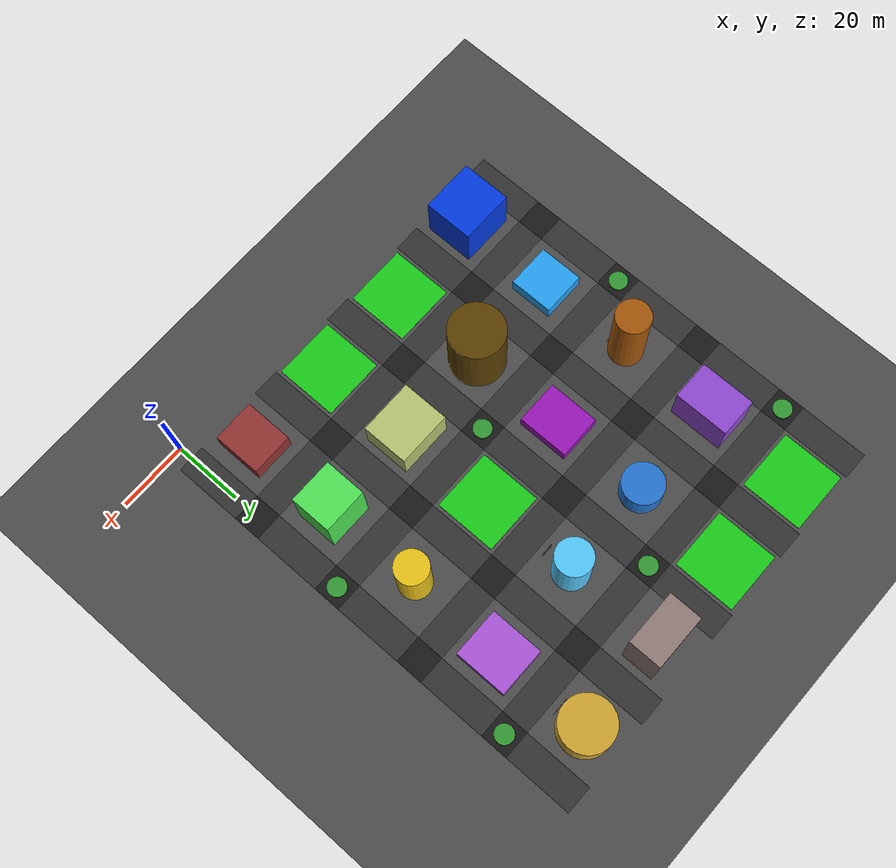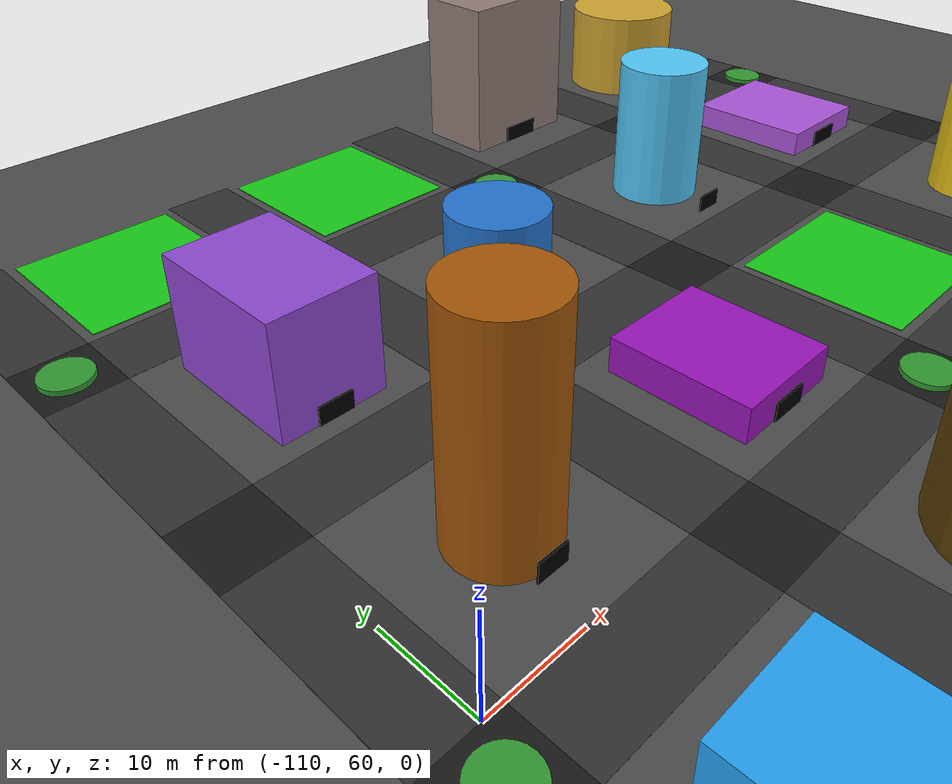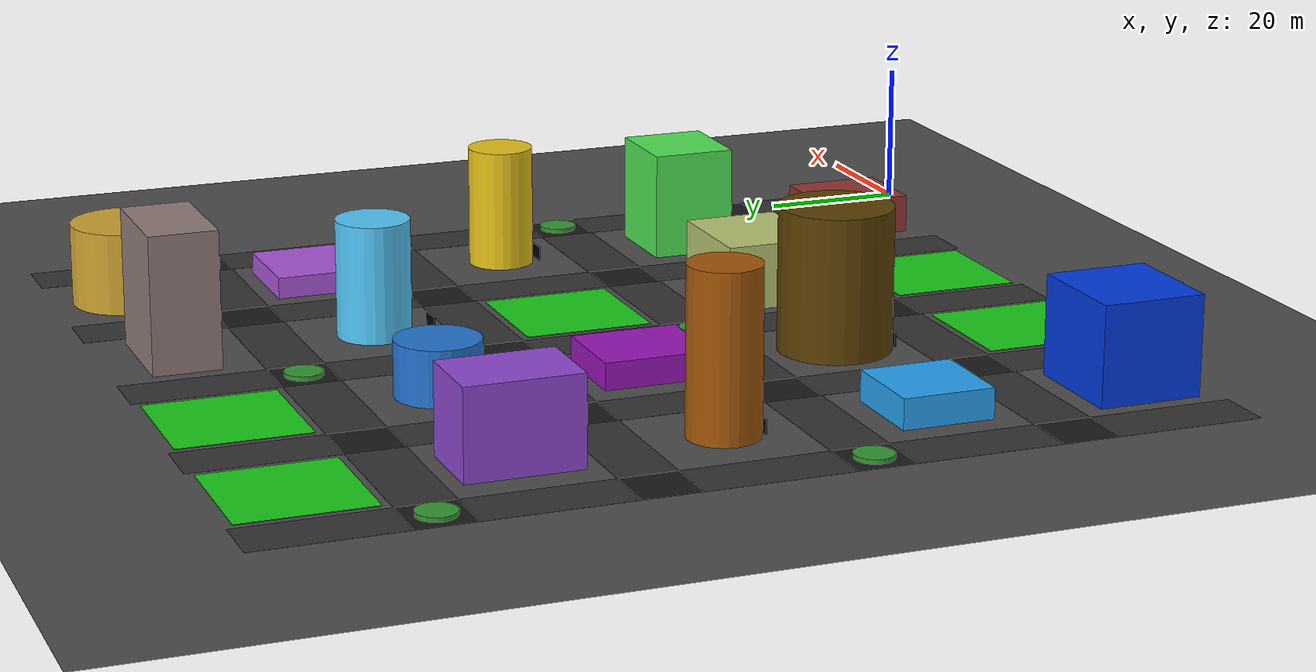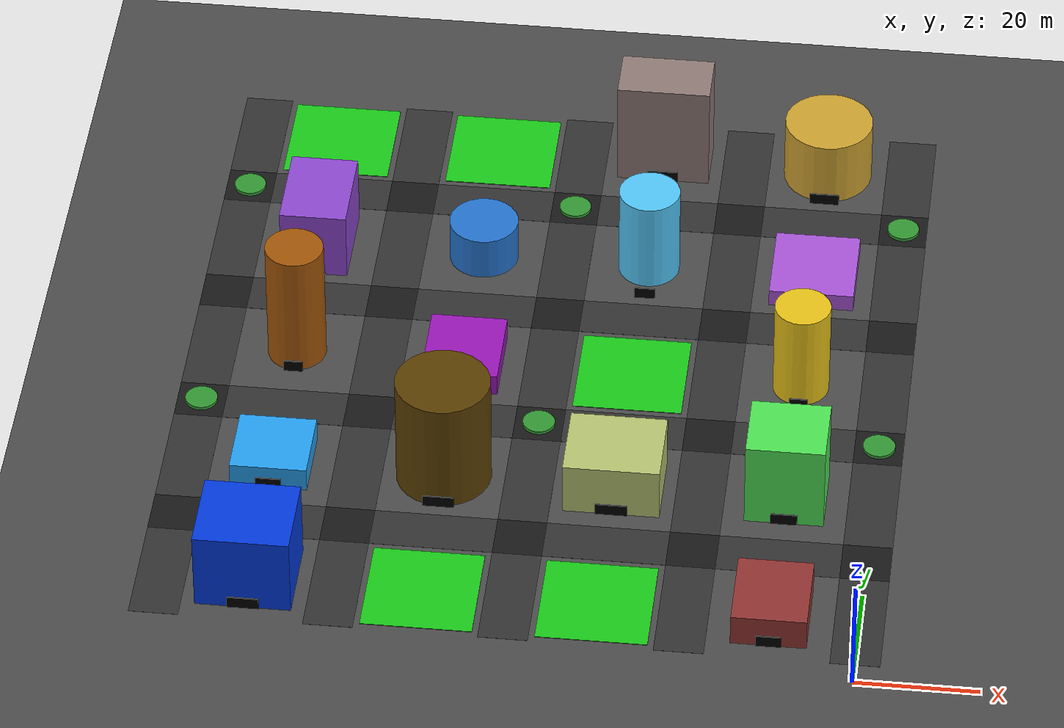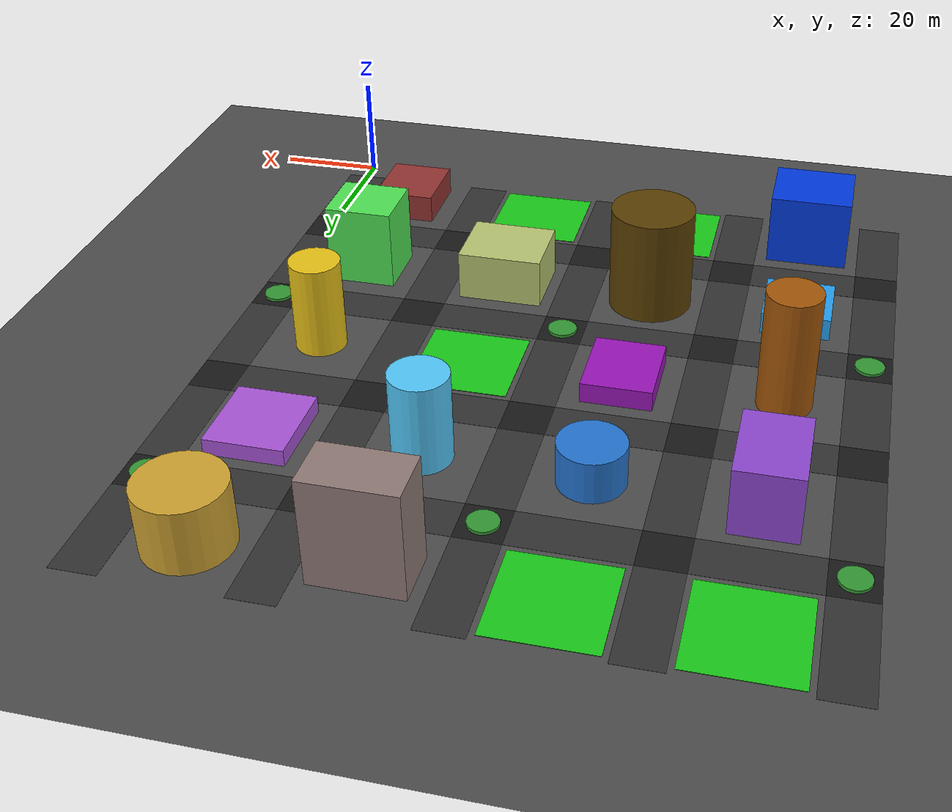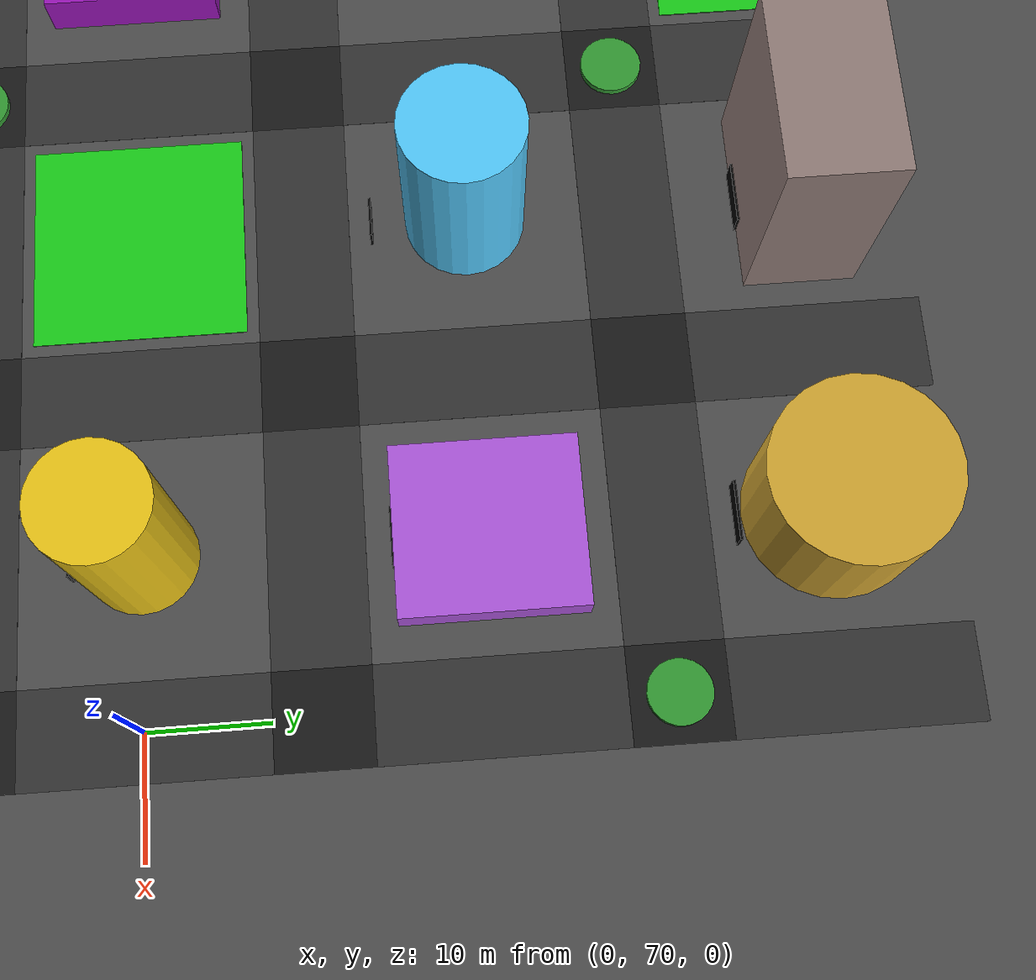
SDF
<sdf version="1.8">
 <world name="urban_city_rich">
  <model name="ground_plane">
   <static>true</static>
   <link name="link">
    <collision name="collision">
     <geometry><plane><normal>0 0 1</normal><size>200 200</size></plane></geometry>
     <surface><friction><ode><mu>100</mu><mu2>50</mu2></ode></friction></surface>
    </collision>
    <visual name="visual">
     <geometry><plane><normal>0 0 1</normal><size>200 200</size></plane></geometry>
     <material><ambient>0.3 0.3 0.3 1</ambient><diffuse>0.3 0.3 0.3 1</diffuse></material>
    </visual>
   </link>
  </model>
  <model name="road_v_-4_0">
   <static>true</static>
   <pose>-112.0 14.0 0.01 0 0 0</pose>
   <link name="link">
    <visual name="vis">
     <geometry><box><size>8.0 20.0 0.02</size></box></geometry>
     <material><ambient>0.2 0.2 0.2 1</ambient><diffuse>0.2 0.2 0.2 1</diffuse></material>
    </visual>
   </link>
  </model>
  <model name="bldg_2">
   <static>true</static>
   <pose>-98.0 14.0 6.871921854589109 0 0 0</pose>
   <link name="link">
    <collision name="col">
     <geometry><box><size>15.495885785892245 14.268601737189726 13.743843709178218</size></box></geometry>
    </collision>
    <visual name="vis">
     <geometry><box><size>15.495885785892245 14.268601737189726 13.743843709178218</size></box></geometry>
     <material>
      <ambient>0.007378564841799773 0.23080644680875095 0.8802637911668005 1</ambient>
      <diffuse>0.007378564841799773 0.23080644680875095 0.8802637911668005 1</diffuse>
     </material>
    </visual>
   </link>
  </model>
  <model name="door_2">
   <static>true</static>
   <pose>-98.0 6.765699131405137 1.0 0 0 0</pose>
   <link name="link">
    <visual name="vis">
     <geometry><box><size>5.165295261964082 0.2 2.0</size></box></geometry>
     <material><ambient>0 0 0 1</ambient><diffuse>0 0 0 1</diffuse></material>
    </visual>
   </link>
  </model>
  <model name="road_inter_-4_1">
   <static>true</static>
   <pose>-112.0 28.0 0.01 0 0 0</pose>
   <link name="link">
    <visual name="vis">
     <geometry><box><size>8.0 8.0 0.02</size></box></geometry>
     <material><ambient>0.1 0.1 0.1 1</ambient><diffuse>0.1 0.1 0.1 1</diffuse></material>
    </visual>
   </link>
  </model>
  <model name="road_h_-4_1">
   <static>true</static>
   <pose>-98.0 28.0 0.01 0 0 0</pose>
   <link name="link">
    <visual name="vis">
     <geometry><box><size>20.0 8.0 0.02</size></box></geometry>
     <material><ambient>0.2 0.2 0.2 1</ambient><diffuse>0.2 0.2 0.2 1</diffuse></material>
    </visual>
   </link>
  </model>
  <model name="road_v_-4_1">
   <static>true</static>
   <pose>-112.0 42.0 0.01 0 0 0</pose>
   <link name="link">
    <visual name="vis">
     <geometry><box><size>8.0 20.0 0.02</size></box></geometry>
     <material><ambient>0.2 0.2 0.2 1</ambient><diffuse>0.2 0.2 0.2 1</diffuse></material>
    </visual>
   </link>
  </model>
  <model name="bldg_3">
   <static>true</static>
   <pose>-98.0 42.0 2.091871394252661 0 0 0</pose>
   <link name="link">
    <collision name="col">
     <geometry><box><size>12.65519496365092 12.680258744932562 4.183742788505322</size></box></geometry>
    </collision>
    <visual name="vis">
     <geometry><box><size>12.65519496365092 12.680258744932562 4.183742788505322</size></box></geometry>
     <material>
      <ambient>0.1498548266455363 0.6387725588322049 0.955054819178483 1</ambient>
      <diffuse>0.1498548266455363 0.6387725588322049 0.955054819178483 1</diffuse>
     </material>
    </visual>
   </link>
  </model>
  <model name="door_3">
   <static>true</static>
   <pose>-98.0 35.55987062753372 1.0 0 0 0</pose>
   <link name="link">
    <visual name="vis">
     <geometry><box><size>4.218398321216974 0.2 2.0</size></box></geometry>
     <material><ambient>0 0 0 1</ambient><diffuse>0 0 0 1</diffuse></material>
    </visual>
   </link>
  </model>
  <model name="road_inter_-4_2">
   <static>true</static>
   <pose>-112.0 56.0 0.01 0 0 0</pose>
   <link name="link">
    <visual name="vis">
     <geometry><box><size>8.0 8.0 0.02</size></box></geometry>
     <material><ambient>0.1 0.1 0.1 1</ambient><diffuse>0.1 0.1 0.1 1</diffuse></material>
    </visual>
   </link>
  </model>
  <model name="roundabout_-4_2">
   <static>true</static>
   <pose>-112.0 56.0 0.3 0 0 0</pose>
   <link name="link">
    <collision name="col">
     <geometry><cylinder><radius>2.6666666666666665</radius><length>0.6</length></cylinder></geometry>
    </collision>
    <visual name="vis">
     <geometry><cylinder><radius>2.6666666666666665</radius><length>0.6</length></cylinder></geometry>
     <material><ambient>0.2 0.6 0.2 1</ambient><diffuse>0.2 0.6 0.2 1</diffuse></material>
    </visual>
   </link>
  </model>
  <model name="road_h_-4_2">
   <static>true</static>
   <pose>-98.0 56.0 0.01 0 0 0</pose>
   <link name="link">
    <visual name="vis">
     <geometry><box><size>20.0 8.0 0.02</size></box></geometry>
     <material><ambient>0.2 0.2 0.2 1</ambient><diffuse>0.2 0.2 0.2 1</diffuse></material>
    </visual>
   </link>
  </model>
  <model name="road_v_-4_2">
   <static>true</static>
   <pose>-112.0 70.0 0.01 0 0 0</pose>
   <link name="link">
    <visual name="vis">
     <geometry><box><size>8.0 20.0 0.02</size></box></geometry>
     <material><ambient>0.2 0.2 0.2 1</ambient><diffuse>0.2 0.2 0.2 1</diffuse></material>
    </visual>
   </link>
  </model>
  <model name="bldg_4">
   <static>true</static>
   <pose>-98.0 70.0 11.17141163954446 0 0 0</pose>
   <link name="link">
    <collision name="col">
     <geometry><cylinder><radius>4.861963068080618</radius><length>22.34282327908892</length></cylinder></geometry>
    </collision>
    <visual name="vis">
     <geometry><cylinder><radius>4.861963068080618</radius><length>22.34282327908892</length></cylinder></geometry>
     <material>
      <ambient>0.6452800324957052 0.34005277793005484 0.035646647061961856 1</ambient>
      <diffuse>0.6452800324957052 0.34005277793005484 0.035646647061961856 1</diffuse>
     </material>
    </visual>
   </link>
  </model>
  <model name="door_4">
   <static>true</static>
   <pose>-98.0 64.91522386664495 1.0 0 0 0</pose>
   <link name="link">
    <visual name="vis">
     <geometry><box><size>3.2413087120537454 0.2 2.0</size></box></geometry>
     <material><ambient>0 0 0 1</ambient><diffuse>0 0 0 1</diffuse></material>
    </visual>
   </link>
  </model>
  <model name="road_inter_-4_3">
   <static>true</static>
   <pose>-112.0 84.0 0.01 0 0 0</pose>
   <link name="link">
    <visual name="vis">
     <geometry><box><size>8.0 8.0 0.02</size></box></geometry>
     <material><ambient>0.1 0.1 0.1 1</ambient><diffuse>0.1 0.1 0.1 1</diffuse></material>
    </visual>
   </link>
  </model>
  <model name="road_h_-4_3">
   <static>true</static>
   <pose>-98.0 84.0 0.01 0 0 0</pose>
   <link name="link">
    <visual name="vis">
     <geometry><box><size>20.0 8.0 0.02</size></box></geometry>
     <material><ambient>0.2 0.2 0.2 1</ambient><diffuse>0.2 0.2 0.2 1</diffuse></material>
    </visual>
   </link>
  </model>
  <model name="road_v_-4_3">
   <static>true</static>
   <pose>-112.0 98.0 0.01 0 0 0</pose>
   <link name="link">
    <visual name="vis">
     <geometry><box><size>8.0 20.0 0.02</size></box></geometry>
     <material><ambient>0.2 0.2 0.2 1</ambient><diffuse>0.2 0.2 0.2 1</diffuse></material>
    </visual>
   </link>
  </model>
  <model name="bldg_5">
   <static>true</static>
   <pose>-98.0 98.0 6.102142837959303 0 0 0</pose>
   <link name="link">
    <collision name="col">
     <geometry><box><size>11.222737588818491 15.767643930074145 12.204285675918605</size></box></geometry>
    </collision>
    <visual name="vis">
     <geometry><box><size>11.222737588818491 15.767643930074145 12.204285675918605</size></box></geometry>
     <material>
      <ambient>0.5592032974253442 0.2837923102071037 0.8228978980625674 1</ambient>
      <diffuse>0.5592032974253442 0.2837923102071037 0.8228978980625674 1</diffuse>
     </material>
    </visual>
   </link>
  </model>
  <model name="door_5">
   <static>true</static>
   <pose>-98.0 90.01617803496293 1.0 0 0 0</pose>
   <link name="link">
    <visual name="vis">
     <geometry><box><size>3.7409125296061636 0.2 2.0</size></box></geometry>
     <material><ambient>0 0 0 1</ambient><diffuse>0 0 0 1</diffuse></material>
    </visual>
   </link>
  </model>
  <model name="road_inter_-4_4">
   <static>true</static>
   <pose>-112.0 112.0 0.01 0 0 0</pose>
   <link name="link">
    <visual name="vis">
     <geometry><box><size>8.0 8.0 0.02</size></box></geometry>
     <material><ambient>0.1 0.1 0.1 1</ambient><diffuse>0.1 0.1 0.1 1</diffuse></material>
    </visual>
   </link>
  </model>
  <model name="roundabout_-4_4">
   <static>true</static>
   <pose>-112.0 112.0 0.3 0 0 0</pose>
   <link name="link">
    <collision name="col">
     <geometry><cylinder><radius>2.6666666666666665</radius><length>0.6</length></cylinder></geometry>
    </collision>
    <visual name="vis">
     <geometry><cylinder><radius>2.6666666666666665</radius><length>0.6</length></cylinder></geometry>
     <material><ambient>0.2 0.6 0.2 1</ambient><diffuse>0.2 0.6 0.2 1</diffuse></material>
    </visual>
   </link>
  </model>
  <model name="road_h_-4_4">
   <static>true</static>
   <pose>-98.0 112.0 0.01 0 0 0</pose>
   <link name="link">
    <visual name="vis">
     <geometry><box><size>20.0 8.0 0.02</size></box></geometry>
     <material><ambient>0.2 0.2 0.2 1</ambient><diffuse>0.2 0.2 0.2 1</diffuse></material>
    </visual>
   </link>
  </model>
  <model name="road_v_-4_4">
   <static>true</static>
   <pose>-112.0 126.0 0.01 0 0 0</pose>
   <link name="link">
    <visual name="vis">
     <geometry><box><size>8.0 20.0 0.02</size></box></geometry>
     <material><ambient>0.2 0.2 0.2 1</ambient><diffuse>0.2 0.2 0.2 1</diffuse></material>
    </visual>
   </link>
  </model>
  <model name="park_-4_4">
   <static>true</static>
   <pose>-98.0 126.0 0.05 0 0 0</pose>
   <link name="link">
    <visual name="vis">
     <geometry><box><size>18.0 18.0 0.1</size></box></geometry>
     <material><ambient>0.1 0.8 0.1 1</ambient><diffuse>0.1 0.8 0.1 1</diffuse></material>
    </visual>
   </link>
  </model>
  <model name="road_v_-3_0">
   <static>true</static>
   <pose>-84.0 14.0 0.01 0 0 0</pose>
   <link name="link">
    <visual name="vis">
     <geometry><box><size>8.0 20.0 0.02</size></box></geometry>
     <material><ambient>0.2 0.2 0.2 1</ambient><diffuse>0.2 0.2 0.2 1</diffuse></material>
    </visual>
   </link>
  </model>
  <model name="park_-3_0">
   <static>true</static>
   <pose>-70.0 14.0 0.05 0 0 0</pose>
   <link name="link">
    <visual name="vis">
     <geometry><box><size>18.0 18.0 0.1</size></box></geometry>
     <material><ambient>0.1 0.8 0.1 1</ambient><diffuse>0.1 0.8 0.1 1</diffuse></material>
    </visual>
   </link>
  </model>
  <model name="road_inter_-3_1">
   <static>true</static>
   <pose>-84.0 28.0 0.01 0 0 0</pose>
   <link name="link">
    <visual name="vis">
     <geometry><box><size>8.0 8.0 0.02</size></box></geometry>
     <material><ambient>0.1 0.1 0.1 1</ambient><diffuse>0.1 0.1 0.1 1</diffuse></material>
    </visual>
   </link>
  </model>
  <model name="road_h_-3_1">
   <static>true</static>
   <pose>-70.0 28.0 0.01 0 0 0</pose>
   <link name="link">
    <visual name="vis">
     <geometry><box><size>20.0 8.0 0.02</size></box></geometry>
     <material><ambient>0.2 0.2 0.2 1</ambient><diffuse>0.2 0.2 0.2 1</diffuse></material>
    </visual>
   </link>
  </model>
  <model name="road_v_-3_1">
   <static>true</static>
   <pose>-84.0 42.0 0.01 0 0 0</pose>
   <link name="link">
    <visual name="vis">
     <geometry><box><size>8.0 20.0 0.02</size></box></geometry>
     <material><ambient>0.2 0.2 0.2 1</ambient><diffuse>0.2 0.2 0.2 1</diffuse></material>
    </visual>
   </link>
  </model>
  <model name="bldg_9">
   <static>true</static>
   <pose>-70.0 42.0 9.960052538225515 0 0 0</pose>
   <link name="link">
    <collision name="col">
     <geometry>
      <cylinder><radius>7.8172579100735575</radius><length>19.92010507645103</length></cylinder>
     </geometry>
    </collision>
    <visual name="vis">
     <geometry>
      <cylinder><radius>7.8172579100735575</radius><length>19.92010507645103</length></cylinder>
     </geometry>
     <material>
      <ambient>0.3586243095088105 0.24959450865288613 0.012275405890124547 1</ambient>
      <diffuse>0.3586243095088105 0.24959450865288613 0.012275405890124547 1</diffuse>
     </material>
    </visual>
   </link>
  </model>
  <model name="door_9">
   <static>true</static>
   <pose>-70.0 34.14622287364215 1.0 0 0 0</pose>
   <link name="link">
    <visual name="vis">
     <geometry><box><size>5.211505273382372 0.2 2.0</size></box></geometry>
     <material><ambient>0 0 0 1</ambient><diffuse>0 0 0 1</diffuse></material>
    </visual>
   </link>
  </model>
  <model name="road_inter_-3_2">
   <static>true</static>
   <pose>-84.0 56.0 0.01 0 0 0</pose>
   <link name="link">
    <visual name="vis">
     <geometry><box><size>8.0 8.0 0.02</size></box></geometry>
     <material><ambient>0.1 0.1 0.1 1</ambient><diffuse>0.1 0.1 0.1 1</diffuse></material>
    </visual>
   </link>
  </model>
  <model name="road_h_-3_2">
   <static>true</static>
   <pose>-70.0 56.0 0.01 0 0 0</pose>
   <link name="link">
    <visual name="vis">
     <geometry><box><size>20.0 8.0 0.02</size></box></geometry>
     <material><ambient>0.2 0.2 0.2 1</ambient><diffuse>0.2 0.2 0.2 1</diffuse></material>
    </visual>
   </link>
  </model>
  <model name="road_v_-3_2">
   <static>true</static>
   <pose>-84.0 70.0 0.01 0 0 0</pose>
   <link name="link">
    <visual name="vis">
     <geometry><box><size>8.0 20.0 0.02</size></box></geometry>
     <material><ambient>0.2 0.2 0.2 1</ambient><diffuse>0.2 0.2 0.2 1</diffuse></material>
    </visual>
   </link>
  </model>
  <model name="bldg_10">
   <static>true</static>
   <pose>-70.0 70.0 1.8771646480618858 0 0 0</pose>
   <link name="link">
    <collision name="col">
     <geometry><box><size>12.654126522715291 14.81363523251945 3.7543292961237715</size></box></geometry>
    </collision>
    <visual name="vis">
     <geometry><box><size>12.654126522715291 14.81363523251945 3.7543292961237715</size></box></geometry>
     <material>
      <ambient>0.6026039844535511 0.08320478289895294 0.7268993759771187 1</ambient>
      <diffuse>0.6026039844535511 0.08320478289895294 0.7268993759771187 1</diffuse>
     </material>
    </visual>
   </link>
  </model>
  <model name="door_10">
   <static>true</static>
   <pose>-70.0 62.493182383740276 1.0 0 0 0</pose>
   <link name="link">
    <visual name="vis">
     <geometry><box><size>4.21804217423843 0.2 2.0</size></box></geometry>
     <material><ambient>0 0 0 1</ambient><diffuse>0 0 0 1</diffuse></material>
    </visual>
   </link>
  </model>
  <model name="road_inter_-3_3">
   <static>true</static>
   <pose>-84.0 84.0 0.01 0 0 0</pose>
   <link name="link">
    <visual name="vis">
     <geometry><box><size>8.0 8.0 0.02</size></box></geometry>
     <material><ambient>0.1 0.1 0.1 1</ambient><diffuse>0.1 0.1 0.1 1</diffuse></material>
    </visual>
   </link>
  </model>
  <model name="road_h_-3_3">
   <static>true</static>
   <pose>-70.0 84.0 0.01 0 0 0</pose>
   <link name="link">
    <visual name="vis">
     <geometry><box><size>20.0 8.0 0.02</size></box></geometry>
     <material><ambient>0.2 0.2 0.2 1</ambient><diffuse>0.2 0.2 0.2 1</diffuse></material>
    </visual>
   </link>
  </model>
  <model name="road_v_-3_3">
   <static>true</static>
   <pose>-84.0 98.0 0.01 0 0 0</pose>
   <link name="link">
    <visual name="vis">
     <geometry><box><size>8.0 20.0 0.02</size></box></geometry>
     <material><ambient>0.2 0.2 0.2 1</ambient><diffuse>0.2 0.2 0.2 1</diffuse></material>
    </visual>
   </link>
  </model>
  <model name="bldg_11">
   <static>true</static>
   <pose>-70.0 98.0 3.8265298128650302 0 0 0</pose>
   <link name="link">
    <collision name="col">
     <geometry>
      <cylinder><radius>5.824363381465605</radius><length>7.6530596257300605</length></cylinder>
     </geometry>
    </collision>
    <visual name="vis">
     <geometry>
      <cylinder><radius>5.824363381465605</radius><length>7.6530596257300605</length></cylinder>
     </geometry>
     <material>
      <ambient>0.14358297201273418 0.4594956118217749 0.818678515794683 1</ambient>
      <diffuse>0.14358297201273418 0.4594956118217749 0.818678515794683 1</diffuse>
     </material>
    </visual>
   </link>
  </model>
  <model name="door_11">
   <static>true</static>
   <pose>-70.0 93.88478456954448 1.0 0 0 0</pose>
   <link name="link">
    <visual name="vis">
     <geometry><box><size>3.8829089209770697 0.2 2.0</size></box></geometry>
     <material><ambient>0 0 0 1</ambient><diffuse>0 0 0 1</diffuse></material>
    </visual>
   </link>
  </model>
  <model name="road_inter_-3_4">
   <static>true</static>
   <pose>-84.0 112.0 0.01 0 0 0</pose>
   <link name="link">
    <visual name="vis">
     <geometry><box><size>8.0 8.0 0.02</size></box></geometry>
     <material><ambient>0.1 0.1 0.1 1</ambient><diffuse>0.1 0.1 0.1 1</diffuse></material>
    </visual>
   </link>
  </model>
  <model name="road_h_-3_4">
   <static>true</static>
   <pose>-70.0 112.0 0.01 0 0 0</pose>
   <link name="link">
    <visual name="vis">
     <geometry><box><size>20.0 8.0 0.02</size></box></geometry>
     <material><ambient>0.2 0.2 0.2 1</ambient><diffuse>0.2 0.2 0.2 1</diffuse></material>
    </visual>
   </link>
  </model>
  <model name="road_v_-3_4">
   <static>true</static>
   <pose>-84.0 126.0 0.01 0 0 0</pose>
   <link name="link">
    <visual name="vis">
     <geometry><box><size>8.0 20.0 0.02</size></box></geometry>
     <material><ambient>0.2 0.2 0.2 1</ambient><diffuse>0.2 0.2 0.2 1</diffuse></material>
    </visual>
   </link>
  </model>
  <model name="park_-3_4">
   <static>true</static>
   <pose>-70.0 126.0 0.05 0 0 0</pose>
   <link name="link">
    <visual name="vis">
     <geometry><box><size>18.0 18.0 0.1</size></box></geometry>
     <material><ambient>0.1 0.8 0.1 1</ambient><diffuse>0.1 0.8 0.1 1</diffuse></material>
    </visual>
   </link>
  </model>
  <model name="road_v_-2_0">
   <static>true</static>
   <pose>-56.0 14.0 0.01 0 0 0</pose>
   <link name="link">
    <visual name="vis">
     <geometry><box><size>8.0 20.0 0.02</size></box></geometry>
     <material><ambient>0.2 0.2 0.2 1</ambient><diffuse>0.2 0.2 0.2 1</diffuse></material>
    </visual>
   </link>
  </model>
  <model name="park_-2_0">
   <static>true</static>
   <pose>-42.0 14.0 0.05 0 0 0</pose>
   <link name="link">
    <visual name="vis">
     <geometry><box><size>18.0 18.0 0.1</size></box></geometry>
     <material><ambient>0.1 0.8 0.1 1</ambient><diffuse>0.1 0.8 0.1 1</diffuse></material>
    </visual>
   </link>
  </model>
  <model name="road_inter_-2_1">
   <static>true</static>
   <pose>-56.0 28.0 0.01 0 0 0</pose>
   <link name="link">
    <visual name="vis">
     <geometry><box><size>8.0 8.0 0.02</size></box></geometry>
     <material><ambient>0.1 0.1 0.1 1</ambient><diffuse>0.1 0.1 0.1 1</diffuse></material>
    </visual>
   </link>
  </model>
  <model name="road_h_-2_1">
   <static>true</static>
   <pose>-42.0 28.0 0.01 0 0 0</pose>
   <link name="link">
    <visual name="vis">
     <geometry><box><size>20.0 8.0 0.02</size></box></geometry>
     <material><ambient>0.2 0.2 0.2 1</ambient><diffuse>0.2 0.2 0.2 1</diffuse></material>
    </visual>
   </link>
  </model>
  <model name="road_v_-2_1">
   <static>true</static>
   <pose>-56.0 42.0 0.01 0 0 0</pose>
   <link name="link">
    <visual name="vis">
     <geometry><box><size>8.0 20.0 0.02</size></box></geometry>
     <material><ambient>0.2 0.2 0.2 1</ambient><diffuse>0.2 0.2 0.2 1</diffuse></material>
    </visual>
   </link>
  </model>
  <model name="bldg_15">
   <static>true</static>
   <pose>-42.0 42.0 4.647097805640947 0 0 0</pose>
   <link name="link">
    <collision name="col">
     <geometry><box><size>15.76349798601867 13.472286385605344 9.294195611281895</size></box></geometry>
    </collision>
    <visual name="vis">
     <geometry><box><size>15.76349798601867 13.472286385605344 9.294195611281895</size></box></geometry>
     <material>
      <ambient>0.7191576907212245 0.7760415757399151 0.4462818985575434 1</ambient>
      <diffuse>0.7191576907212245 0.7760415757399151 0.4462818985575434 1</diffuse>
     </material>
    </visual>
   </link>
  </model>
  <model name="door_15">
   <static>true</static>
   <pose>-42.0 35.16385680719733 1.0 0 0 0</pose>
   <link name="link">
    <visual name="vis">
     <geometry><box><size>5.25449932867289 0.2 2.0</size></box></geometry>
     <material><ambient>0 0 0 1</ambient><diffuse>0 0 0 1</diffuse></material>
    </visual>
   </link>
  </model>
  <model name="road_inter_-2_2">
   <static>true</static>
   <pose>-56.0 56.0 0.01 0 0 0</pose>
   <link name="link">
    <visual name="vis">
     <geometry><box><size>8.0 8.0 0.02</size></box></geometry>
     <material><ambient>0.1 0.1 0.1 1</ambient><diffuse>0.1 0.1 0.1 1</diffuse></material>
    </visual>
   </link>
  </model>
  <model name="roundabout_-2_2">
   <static>true</static>
   <pose>-56.0 56.0 0.3 0 0 0</pose>
   <link name="link">
    <collision name="col">
     <geometry><cylinder><radius>2.6666666666666665</radius><length>0.6</length></cylinder></geometry>
    </collision>
    <visual name="vis">
     <geometry><cylinder><radius>2.6666666666666665</radius><length>0.6</length></cylinder></geometry>
     <material><ambient>0.2 0.6 0.2 1</ambient><diffuse>0.2 0.6 0.2 1</diffuse></material>
    </visual>
   </link>
  </model>
  <model name="road_h_-2_2">
   <static>true</static>
   <pose>-42.0 56.0 0.01 0 0 0</pose>
   <link name="link">
    <visual name="vis">
     <geometry><box><size>20.0 8.0 0.02</size></box></geometry>
     <material><ambient>0.2 0.2 0.2 1</ambient><diffuse>0.2 0.2 0.2 1</diffuse></material>
    </visual>
   </link>
  </model>
  <model name="road_v_-2_2">
   <static>true</static>
   <pose>-56.0 70.0 0.01 0 0 0</pose>
   <link name="link">
    <visual name="vis">
     <geometry><box><size>8.0 20.0 0.02</size></box></geometry>
     <material><ambient>0.2 0.2 0.2 1</ambient><diffuse>0.2 0.2 0.2 1</diffuse></material>
    </visual>
   </link>
  </model>
  <model name="park_-2_2">
   <static>true</static>
   <pose>-42.0 70.0 0.05 0 0 0</pose>
   <link name="link">
    <visual name="vis">
     <geometry><box><size>18.0 18.0 0.1</size></box></geometry>
     <material><ambient>0.1 0.8 0.1 1</ambient><diffuse>0.1 0.8 0.1 1</diffuse></material>
    </visual>
   </link>
  </model>
  <model name="road_inter_-2_3">
   <static>true</static>
   <pose>-56.0 84.0 0.01 0 0 0</pose>
   <link name="link">
    <visual name="vis">
     <geometry><box><size>8.0 8.0 0.02</size></box></geometry>
     <material><ambient>0.1 0.1 0.1 1</ambient><diffuse>0.1 0.1 0.1 1</diffuse></material>
    </visual>
   </link>
  </model>
  <model name="road_h_-2_3">
   <static>true</static>
   <pose>-42.0 84.0 0.01 0 0 0</pose>
   <link name="link">
    <visual name="vis">
     <geometry><box><size>20.0 8.0 0.02</size></box></geometry>
     <material><ambient>0.2 0.2 0.2 1</ambient><diffuse>0.2 0.2 0.2 1</diffuse></material>
    </visual>
   </link>
  </model>
  <model name="road_v_-2_3">
   <static>true</static>
   <pose>-56.0 98.0 0.01 0 0 0</pose>
   <link name="link">
    <visual name="vis">
     <geometry><box><size>8.0 20.0 0.02</size></box></geometry>
     <material><ambient>0.2 0.2 0.2 1</ambient><diffuse>0.2 0.2 0.2 1</diffuse></material>
    </visual>
   </link>
  </model>
  <model name="bldg_16">
   <static>true</static>
   <pose>-42.0 98.0 8.187884358222295 0 0 0</pose>
   <link name="link">
    <collision name="col">
     <geometry>
      <cylinder><radius>5.1270535653662455</radius><length>16.37576871644459</length></cylinder>
     </geometry>
    </collision>
    <visual name="vis">
     <geometry>
      <cylinder><radius>5.1270535653662455</radius><length>16.37576871644459</length></cylinder>
     </geometry>
     <material>
      <ambient>0.32547679088761305 0.7877283173419841 0.9836225916744558 1</ambient>
      <diffuse>0.32547679088761305 0.7877283173419841 0.9836225916744558 1</diffuse>
     </material>
    </visual>
   </link>
  </model>
  <model name="door_16">
   <static>true</static>
   <pose>-42.0 89.93933041101761 1.0 0 0 0</pose>
   <link name="link">
    <visual name="vis">
     <geometry><box><size>3.4180357102441636 0.2 2.0</size></box></geometry>
     <material><ambient>0 0 0 1</ambient><diffuse>0 0 0 1</diffuse></material>
    </visual>
   </link>
  </model>
  <model name="road_inter_-2_4">
   <static>true</static>
   <pose>-56.0 112.0 0.01 0 0 0</pose>
   <link name="link">
    <visual name="vis">
     <geometry><box><size>8.0 8.0 0.02</size></box></geometry>
     <material><ambient>0.1 0.1 0.1 1</ambient><diffuse>0.1 0.1 0.1 1</diffuse></material>
    </visual>
   </link>
  </model>
  <model name="roundabout_-2_4">
   <static>true</static>
   <pose>-56.0 112.0 0.3 0 0 0</pose>
   <link name="link">
    <collision name="col">
     <geometry><cylinder><radius>2.6666666666666665</radius><length>0.6</length></cylinder></geometry>
    </collision>
    <visual name="vis">
     <geometry><cylinder><radius>2.6666666666666665</radius><length>0.6</length></cylinder></geometry>
     <material><ambient>0.2 0.6 0.2 1</ambient><diffuse>0.2 0.6 0.2 1</diffuse></material>
    </visual>
   </link>
  </model>
  <model name="road_h_-2_4">
   <static>true</static>
   <pose>-42.0 112.0 0.01 0 0 0</pose>
   <link name="link">
    <visual name="vis">
     <geometry><box><size>20.0 8.0 0.02</size></box></geometry>
     <material><ambient>0.2 0.2 0.2 1</ambient><diffuse>0.2 0.2 0.2 1</diffuse></material>
    </visual>
   </link>
  </model>
  <model name="road_v_-2_4">
   <static>true</static>
   <pose>-56.0 126.0 0.01 0 0 0</pose>
   <link name="link">
    <visual name="vis">
     <geometry><box><size>8.0 20.0 0.02</size></box></geometry>
     <material><ambient>0.2 0.2 0.2 1</ambient><diffuse>0.2 0.2 0.2 1</diffuse></material>
    </visual>
   </link>
  </model>
  <model name="bldg_17">
   <static>true</static>
   <pose>-42.0 126.0 9.525055032280763 0 0 0</pose>
   <link name="link">
    <collision name="col">
     <geometry><box><size>15.701362822979156 9.450235959792298 19.050110064561526</size></box></geometry>
    </collision>
    <visual name="vis">
     <geometry><box><size>15.701362822979156 9.450235959792298 19.050110064561526</size></box></geometry>
     <material>
      <ambient>0.5679989177881775 0.4847383450541677 0.4688976092850521 1</ambient>
      <diffuse>0.5679989177881775 0.4847383450541677 0.4688976092850521 1</diffuse>
     </material>
    </visual>
   </link>
  </model>
  <model name="door_17">
   <static>true</static>
   <pose>-42.0 121.17488202010385 1.0 0 0 0</pose>
   <link name="link">
    <visual name="vis">
     <geometry><box><size>5.2337876076597185 0.2 2.0</size></box></geometry>
     <material><ambient>0 0 0 1</ambient><diffuse>0 0 0 1</diffuse></material>
    </visual>
   </link>
  </model>
  <model name="road_v_-1_0">
   <static>true</static>
   <pose>-28.0 14.0 0.01 0 0 0</pose>
   <link name="link">
    <visual name="vis">
     <geometry><box><size>8.0 20.0 0.02</size></box></geometry>
     <material><ambient>0.2 0.2 0.2 1</ambient><diffuse>0.2 0.2 0.2 1</diffuse></material>
    </visual>
   </link>
  </model>
  <model name="bldg_19">
   <static>true</static>
   <pose>-14.0 14.0 2.757713768041565 0 0 0</pose>
   <link name="link">
    <collision name="col">
     <geometry><box><size>12.140478911146484 14.036751003596061 5.51542753608313</size></box></geometry>
    </collision>
    <visual name="vis">
     <geometry><box><size>12.140478911146484 14.036751003596061 5.51542753608313</size></box></geometry>
     <material>
      <ambient>0.5731753270957767 0.2038373489023103 0.19605695629109343 1</ambient>
      <diffuse>0.5731753270957767 0.2038373489023103 0.19605695629109343 1</diffuse>
     </material>
    </visual>
   </link>
  </model>
  <model name="door_19">
   <static>true</static>
   <pose>-14.0 6.88162449820197 1.0 0 0 0</pose>
   <link name="link">
    <visual name="vis">
     <geometry><box><size>4.046826303715495 0.2 2.0</size></box></geometry>
     <material><ambient>0 0 0 1</ambient><diffuse>0 0 0 1</diffuse></material>
    </visual>
   </link>
  </model>
  <model name="road_inter_-1_1">
   <static>true</static>
   <pose>-28.0 28.0 0.01 0 0 0</pose>
   <link name="link">
    <visual name="vis">
     <geometry><box><size>8.0 8.0 0.02</size></box></geometry>
     <material><ambient>0.1 0.1 0.1 1</ambient><diffuse>0.1 0.1 0.1 1</diffuse></material>
    </visual>
   </link>
  </model>
  <model name="road_h_-1_1">
   <static>true</static>
   <pose>-14.0 28.0 0.01 0 0 0</pose>
   <link name="link">
    <visual name="vis">
     <geometry><box><size>20.0 8.0 0.02</size></box></geometry>
     <material><ambient>0.2 0.2 0.2 1</ambient><diffuse>0.2 0.2 0.2 1</diffuse></material>
    </visual>
   </link>
  </model>
  <model name="road_v_-1_1">
   <static>true</static>
   <pose>-28.0 42.0 0.01 0 0 0</pose>
   <link name="link">
    <visual name="vis">
     <geometry><box><size>8.0 20.0 0.02</size></box></geometry>
     <material><ambient>0.2 0.2 0.2 1</ambient><diffuse>0.2 0.2 0.2 1</diffuse></material>
    </visual>
   </link>
  </model>
  <model name="bldg_20">
   <static>true</static>
   <pose>-14.0 42.0 7.672740519004155 0 0 0</pose>
   <link name="link">
    <collision name="col">
     <geometry><box><size>12.881039106564529 11.936921281808964 15.34548103800831</size></box></geometry>
    </collision>
    <visual name="vis">
     <geometry><box><size>12.881039106564529 11.936921281808964 15.34548103800831</size></box></geometry>
     <material>
      <ambient>0.3089189860773851 0.8969932661377837 0.3322621758122244 1</ambient>
      <diffuse>0.3089189860773851 0.8969932661377837 0.3322621758122244 1</diffuse>
     </material>
    </visual>
   </link>
  </model>
  <model name="door_20">
   <static>true</static>
   <pose>-14.0 35.93153935909552 1.0 0 0 0</pose>
   <link name="link">
    <visual name="vis">
     <geometry><box><size>4.293679702188176 0.2 2.0</size></box></geometry>
     <material><ambient>0 0 0 1</ambient><diffuse>0 0 0 1</diffuse></material>
    </visual>
   </link>
  </model>
  <model name="road_inter_-1_2">
   <static>true</static>
   <pose>-28.0 56.0 0.01 0 0 0</pose>
   <link name="link">
    <visual name="vis">
     <geometry><box><size>8.0 8.0 0.02</size></box></geometry>
     <material><ambient>0.1 0.1 0.1 1</ambient><diffuse>0.1 0.1 0.1 1</diffuse></material>
    </visual>
   </link>
  </model>
  <model name="road_h_-1_2">
   <static>true</static>
   <pose>-14.0 56.0 0.01 0 0 0</pose>
   <link name="link">
    <visual name="vis">
     <geometry><box><size>20.0 8.0 0.02</size></box></geometry>
     <material><ambient>0.2 0.2 0.2 1</ambient><diffuse>0.2 0.2 0.2 1</diffuse></material>
    </visual>
   </link>
  </model>
  <model name="road_v_-1_2">
   <static>true</static>
   <pose>-28.0 70.0 0.01 0 0 0</pose>
   <link name="link">
    <visual name="vis">
     <geometry><box><size>8.0 20.0 0.02</size></box></geometry>
     <material><ambient>0.2 0.2 0.2 1</ambient><diffuse>0.2 0.2 0.2 1</diffuse></material>
    </visual>
   </link>
  </model>
  <model name="bldg_21">
   <static>true</static>
   <pose>-14.0 70.0 8.666523748330219 0 0 0</pose>
   <link name="link">
    <collision name="col">
     <geometry>
      <cylinder><radius>4.649175699969307</radius><length>17.333047496660438</length></cylinder>
     </geometry>
    </collision>
    <visual name="vis">
     <geometry>
      <cylinder><radius>4.649175699969307</radius><length>17.333047496660438</length></cylinder>
     </geometry>
     <material>
      <ambient>0.9140545132175812 0.7648078160391948 0.09196075143216109 1</ambient>
      <diffuse>0.9140545132175812 0.7648078160391948 0.09196075143216109 1</diffuse>
     </material>
    </visual>
   </link>
  </model>
  <model name="door_21">
   <static>true</static>
   <pose>-14.0 64.47551798296992 1.0 0 0 0</pose>
   <link name="link">
    <visual name="vis">
     <geometry><box><size>3.099450466646205 0.2 2.0</size></box></geometry>
     <material><ambient>0 0 0 1</ambient><diffuse>0 0 0 1</diffuse></material>
    </visual>
   </link>
  </model>
  <model name="road_inter_-1_3">
   <static>true</static>
   <pose>-28.0 84.0 0.01 0 0 0</pose>
   <link name="link">
    <visual name="vis">
     <geometry><box><size>8.0 8.0 0.02</size></box></geometry>
     <material><ambient>0.1 0.1 0.1 1</ambient><diffuse>0.1 0.1 0.1 1</diffuse></material>
    </visual>
   </link>
  </model>
  <model name="road_h_-1_3">
   <static>true</static>
   <pose>-14.0 84.0 0.01 0 0 0</pose>
   <link name="link">
    <visual name="vis">
     <geometry><box><size>20.0 8.0 0.02</size></box></geometry>
     <material><ambient>0.2 0.2 0.2 1</ambient><diffuse>0.2 0.2 0.2 1</diffuse></material>
    </visual>
   </link>
  </model>
  <model name="road_v_-1_3">
   <static>true</static>
   <pose>-28.0 98.0 0.01 0 0 0</pose>
   <link name="link">
    <visual name="vis">
     <geometry><box><size>8.0 20.0 0.02</size></box></geometry>
     <material><ambient>0.2 0.2 0.2 1</ambient><diffuse>0.2 0.2 0.2 1</diffuse></material>
    </visual>
   </link>
  </model>
  <model name="bldg_22">
   <static>true</static>
   <pose>-14.0 98.0 1.5162245402027925 0 0 0</pose>
   <link name="link">
    <collision name="col">
     <geometry><box><size>14.177328477459566 15.376592342885587 3.032449080405585</size></box></geometry>
    </collision>
    <visual name="vis">
     <geometry><box><size>14.177328477459566 15.376592342885587 3.032449080405585</size></box></geometry>
     <material>
      <ambient>0.6715406523524126 0.3362186619153813 0.853923451624441 1</ambient>
      <diffuse>0.6715406523524126 0.3362186619153813 0.853923451624441 1</diffuse>
     </material>
    </visual>
   </link>
  </model>
  <model name="door_22">
   <static>true</static>
   <pose>-14.0 90.2117038285572 1.0 0 0 0</pose>
   <link name="link">
    <visual name="vis">
     <geometry><box><size>4.725776159153189 0.2 2.0</size></box></geometry>
     <material><ambient>0 0 0 1</ambient><diffuse>0 0 0 1</diffuse></material>
    </visual>
   </link>
  </model>
  <model name="road_inter_-1_4">
   <static>true</static>
   <pose>-28.0 112.0 0.01 0 0 0</pose>
   <link name="link">
    <visual name="vis">
     <geometry><box><size>8.0 8.0 0.02</size></box></geometry>
     <material><ambient>0.1 0.1 0.1 1</ambient><diffuse>0.1 0.1 0.1 1</diffuse></material>
    </visual>
   </link>
  </model>
  <model name="road_h_-1_4">
   <static>true</static>
   <pose>-14.0 112.0 0.01 0 0 0</pose>
   <link name="link">
    <visual name="vis">
     <geometry><box><size>20.0 8.0 0.02</size></box></geometry>
     <material><ambient>0.2 0.2 0.2 1</ambient><diffuse>0.2 0.2 0.2 1</diffuse></material>
    </visual>
   </link>
  </model>
  <model name="road_v_-1_4">
   <static>true</static>
   <pose>-28.0 126.0 0.01 0 0 0</pose>
   <link name="link">
    <visual name="vis">
     <geometry><box><size>8.0 20.0 0.02</size></box></geometry>
     <material><ambient>0.2 0.2 0.2 1</ambient><diffuse>0.2 0.2 0.2 1</diffuse></material>
    </visual>
   </link>
  </model>
  <model name="bldg_23">
   <static>true</static>
   <pose>-14.0 126.0 5.76797907140169 0 0 0</pose>
   <link name="link">
    <collision name="col">
     <geometry><cylinder><radius>7.475280069416048</radius><length>11.53595814280338</length></cylinder></geometry>
    </collision>
    <visual name="vis">
     <geometry><cylinder><radius>7.475280069416048</radius><length>11.53595814280338</length></cylinder></geometry>
     <material>
      <ambient>0.8143191471643694 0.643111451474141 0.1933663860682776 1</ambient>
      <diffuse>0.8143191471643694 0.643111451474141 0.1933663860682776 1</diffuse>
     </material>
    </visual>
   </link>
  </model>
  <model name="door_23">
   <static>true</static>
   <pose>-14.0 117.99811806132087 1.0 0 0 0</pose>
   <link name="link">
    <visual name="vis">
     <geometry><box><size>4.9835200462773654 0.2 2.0</size></box></geometry>
     <material><ambient>0 0 0 1</ambient><diffuse>0 0 0 1</diffuse></material>
    </visual>
   </link>
  </model>
  <model name="road_v_0_0">
   <static>true</static>
   <pose>0.0 14.0 0.01 0 0 0</pose>
   <link name="link">
    <visual name="vis">
     <geometry><box><size>8.0 20.0 0.02</size></box></geometry>
     <material><ambient>0.2 0.2 0.2 1</ambient><diffuse>0.2 0.2 0.2 1</diffuse></material>
    </visual>
   </link>
  </model>
  <model name="road_inter_0_1">
   <static>true</static>
   <pose>0.0 28.0 0.01 0 0 0</pose>
   <link name="link">
    <visual name="vis">
     <geometry><box><size>8.0 8.0 0.02</size></box></geometry>
     <material><ambient>0.1 0.1 0.1 1</ambient><diffuse>0.1 0.1 0.1 1</diffuse></material>
    </visual>
   </link>
  </model>
  <model name="road_v_0_1">
   <static>true</static>
   <pose>0.0 42.0 0.01 0 0 0</pose>
   <link name="link">
    <visual name="vis">
     <geometry><box><size>8.0 20.0 0.02</size></box></geometry>
     <material><ambient>0.2 0.2 0.2 1</ambient><diffuse>0.2 0.2 0.2 1</diffuse></material>
    </visual>
   </link>
  </model>
  <model name="road_inter_0_2">
   <static>true</static>
   <pose>0.0 56.0 0.01 0 0 0</pose>
   <link name="link">
    <visual name="vis">
     <geometry><box><size>8.0 8.0 0.02</size></box></geometry>
     <material><ambient>0.1 0.1 0.1 1</ambient><diffuse>0.1 0.1 0.1 1</diffuse></material>
    </visual>
   </link>
  </model>
  <model name="roundabout_0_2">
   <static>true</static>
   <pose>0.0 56.0 0.3 0 0 0</pose>
   <link name="link">
    <collision name="col">
     <geometry><cylinder><radius>2.6666666666666665</radius><length>0.6</length></cylinder></geometry>
    </collision>
    <visual name="vis">
     <geometry><cylinder><radius>2.6666666666666665</radius><length>0.6</length></cylinder></geometry>
     <material><ambient>0.2 0.6 0.2 1</ambient><diffuse>0.2 0.6 0.2 1</diffuse></material>
    </visual>
   </link>
  </model>
  <model name="road_v_0_2">
   <static>true</static>
   <pose>0.0 70.0 0.01 0 0 0</pose>
   <link name="link">
    <visual name="vis">
     <geometry><box><size>8.0 20.0 0.02</size></box></geometry>
     <material><ambient>0.2 0.2 0.2 1</ambient><diffuse>0.2 0.2 0.2 1</diffuse></material>
    </visual>
   </link>
  </model>
  <model name="road_inter_0_3">
   <static>true</static>
   <pose>0.0 84.0 0.01 0 0 0</pose>
   <link name="link">
    <visual name="vis">
     <geometry><box><size>8.0 8.0 0.02</size></box></geometry>
     <material><ambient>0.1 0.1 0.1 1</ambient><diffuse>0.1 0.1 0.1 1</diffuse></material>
    </visual>
   </link>
  </model>
  <model name="road_v_0_3">
   <static>true</static>
   <pose>0.0 98.0 0.01 0 0 0</pose>
   <link name="link">
    <visual name="vis">
     <geometry><box><size>8.0 20.0 0.02</size></box></geometry>
     <material><ambient>0.2 0.2 0.2 1</ambient><diffuse>0.2 0.2 0.2 1</diffuse></material>
    </visual>
   </link>
  </model>
  <model name="road_inter_0_4">
   <static>true</static>
   <pose>0.0 112.0 0.01 0 0 0</pose>
   <link name="link">
    <visual name="vis">
     <geometry><box><size>8.0 8.0 0.02</size></box></geometry>
     <material><ambient>0.1 0.1 0.1 1</ambient><diffuse>0.1 0.1 0.1 1</diffuse></material>
    </visual>
   </link>
  </model>
  <model name="roundabout_0_4">
   <static>true</static>
   <pose>0.0 112.0 0.3 0 0 0</pose>
   <link name="link">
    <collision name="col">
     <geometry><cylinder><radius>2.6666666666666665</radius><length>0.6</length></cylinder></geometry>
    </collision>
    <visual name="vis">
     <geometry><cylinder><radius>2.6666666666666665</radius><length>0.6</length></cylinder></geometry>
     <material><ambient>0.2 0.6 0.2 1</ambient><diffuse>0.2 0.6 0.2 1</diffuse></material>
    </visual>
   </link>
  </model>
  <model name="road_v_0_4">
   <static>true</static>
   <pose>0.0 126.0 0.01 0 0 0</pose>
   <link name="link">
    <visual name="vis">
     <geometry><box><size>8.0 20.0 0.02</size></box></geometry>
     <material><ambient>0.2 0.2 0.2 1</ambient><diffuse>0.2 0.2 0.2 1</diffuse></material>
    </visual>
   </link>
  </model>
 </world>
</sdf>
